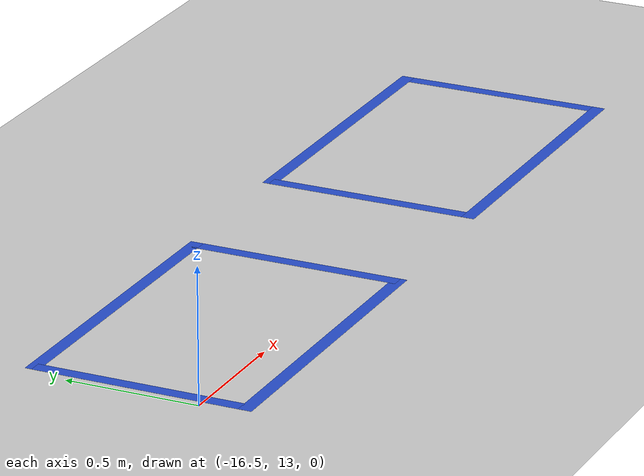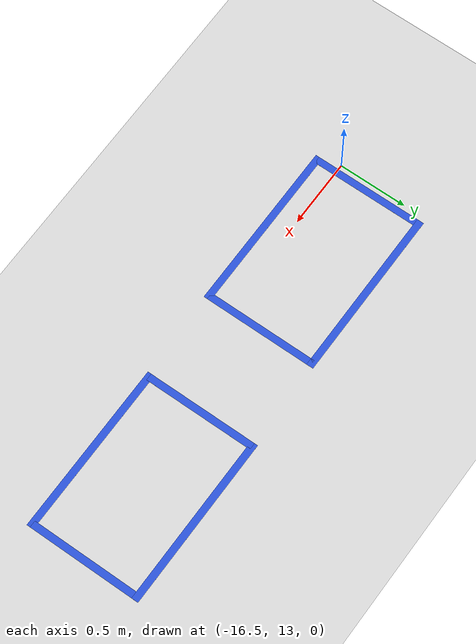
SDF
<sdf version="1.6">
 <world name="default">
  <model name="ground_plane">
   <static>1</static>
   <link name="link">
    <collision name="collision">
     <geometry><plane><normal>0 0 1</normal><size>100 100</size></plane></geometry>
     <surface><friction><ode><mu>100</mu><mu2>50</mu2></ode></friction></surface>
    </collision>
    <visual name="visual">
     <cast_shadows>0</cast_shadows>
     <geometry><plane><normal>0 0 1</normal><size>100 100</size></plane></geometry>
     <material>
      <script><uri>file://media/materials/scripts/gazebo.material</uri><name>Gazebo/Grey</name></script>
     </material>
    </visual>
   </link>
  </model>
  <model name="waitSpot_1">
   <link name="link_4">
    <inertial>
     <mass>1</mass>
     <inertia>
      <ixx>0.166667</ixx>
      <ixy>0</ixy>
      <ixz>0</ixz>
      <iyy>0.166667</iyy>
      <iyz>0</iyz>
      <izz>0.166667</izz>
     </inertia>
    </inertial>
    <visual name="ModelPreview_8::link_4::visual_3">
     <pose>-0.6 0 0 0 -0 0</pose>
     <geometry><box><size>0.05 0.8 0.0001</size></box></geometry>
     <material>
      <lighting>1</lighting>
      <script><uri>file://media/materials/scripts/gazebo.material</uri><name>Gazebo/Blue</name></script>
     </material>
    </visual>
    <visual name="ModelPreview_8::link_4::visual_1">
     <pose>0 -0.4 0 0 -0 0</pose>
     <geometry><box><size>1.25 0.05 0.0001</size></box></geometry>
     <material>
      <lighting>1</lighting>
      <script><uri>file://media/materials/scripts/gazebo.material</uri><name>Gazebo/Blue</name></script>
     </material>
    </visual>
    <visual name="ModelPreview_8::link_4::visual_2">
     <pose>0.6 0 0 0 -0 0</pose>
     <geometry><box><size>0.05 0.8 0.0001</size></box></geometry>
     <material>
      <lighting>1</lighting>
      <script><uri>file://media/materials/scripts/gazebo.material</uri><name>Gazebo/Blue</name></script>
     </material>
    </visual>
    <visual name="visual">
     <pose>0 0.4 0 0 -0 0</pose>
     <geometry><box><size>1.25 0.05 0.0001</size></box></geometry>
     <material>
      <lighting>1</lighting>
      <script><uri>file://media/materials/scripts/gazebo.material</uri><name>Gazebo/Blue</name></script>
     </material>
    </visual>
    <collision name="collision_2">
     <pose>0.6 0 0 0 -0 0</pose>
     <geometry><box><size>0.05 0.8 0.0001</size></box></geometry>
     <surface>
      <friction>
       <ode><mu>1</mu><mu2>1</mu2><fdir1>0 0 0</fdir1><slip1>0</slip1><slip2>0</slip2></ode>
       <torsional>
        <coefficient>1</coefficient>
        <patch_radius>0</patch_radius>
        <surface_radius>0</surface_radius>
        <use_patch_radius>1</use_patch_radius>
        <ode><slip>0</slip></ode>
       </torsional>
      </friction>
      <bounce><restitution_coefficient>0</restitution_coefficient><threshold>1e+06</threshold></bounce>
      <contact>
       <collide_without_contact>0</collide_without_contact>
       <collide_without_contact_bitmask>1</collide_without_contact_bitmask>
       <collide_bitmask>1</collide_bitmask>
       <ode>
        <soft_cfm>0</soft_cfm>
        <soft_erp>0.2</soft_erp>
        <kp>1e+13</kp>
        <kd>1</kd>
        <max_vel>0.01</max_vel>
        <min_depth>0</min_depth>
       </ode>
       <bullet>
        <split_impulse>1</split_impulse>
        <split_impulse_penetration_threshold>-0.01</split_impulse_penetration_threshold>
        <soft_cfm>0</soft_cfm>
        <soft_erp>0.2</soft_erp>
        <kp>1e+13</kp>
        <kd>1</kd>
       </bullet>
      </contact>
     </surface>
    </collision>
    <collision name="collision">
     <pose>0 0.4 0 0 -0 0</pose>
     <geometry><box><size>1.25 0.05 0.0001</size></box></geometry>
     <surface>
      <friction>
       <ode><mu>1</mu><mu2>1</mu2><fdir1>0 0 0</fdir1><slip1>0</slip1><slip2>0</slip2></ode>
       <torsional>
        <coefficient>1</coefficient>
        <patch_radius>0</patch_radius>
        <surface_radius>0</surface_radius>
        <use_patch_radius>1</use_patch_radius>
        <ode><slip>0</slip></ode>
       </torsional>
      </friction>
      <bounce><restitution_coefficient>0</restitution_coefficient><threshold>1e+06</threshold></bounce>
      <contact>
       <collide_without_contact>0</collide_without_contact>
       <collide_without_contact_bitmask>1</collide_without_contact_bitmask>
       <collide_bitmask>1</collide_bitmask>
       <ode>
        <soft_cfm>0</soft_cfm>
        <soft_erp>0.2</soft_erp>
        <kp>1e+13</kp>
        <kd>1</kd>
        <max_vel>0.01</max_vel>
        <min_depth>0</min_depth>
       </ode>
       <bullet>
        <split_impulse>1</split_impulse>
        <split_impulse_penetration_threshold>-0.01</split_impulse_penetration_threshold>
        <soft_cfm>0</soft_cfm>
        <soft_erp>0.2</soft_erp>
        <kp>1e+13</kp>
        <kd>1</kd>
       </bullet>
      </contact>
     </surface>
    </collision>
    <collision name="collision_1">
     <pose>0 -0.4 0 0 -0 0</pose>
     <geometry><box><size>1.25 0.05 0.0001</size></box></geometry>
     <surface>
      <friction>
       <ode><mu>1</mu><mu2>1</mu2><fdir1>0 0 0</fdir1><slip1>0</slip1><slip2>0</slip2></ode>
       <torsional>
        <coefficient>1</coefficient>
        <patch_radius>0</patch_radius>
        <surface_radius>0</surface_radius>
        <use_patch_radius>1</use_patch_radius>
        <ode><slip>0</slip></ode>
       </torsional>
      </friction>
      <bounce><restitution_coefficient>0</restitution_coefficient><threshold>1e+06</threshold></bounce>
      <contact>
       <collide_without_contact>0</collide_without_contact>
       <collide_without_contact_bitmask>1</collide_without_contact_bitmask>
       <collide_bitmask>1</collide_bitmask>
       <ode>
        <soft_cfm>0</soft_cfm>
        <soft_erp>0.2</soft_erp>
        <kp>1e+13</kp>
        <kd>1</kd>
        <max_vel>0.01</max_vel>
        <min_depth>0</min_depth>
       </ode>
       <bullet>
        <split_impulse>1</split_impulse>
        <split_impulse_penetration_threshold>-0.01</split_impulse_penetration_threshold>
        <soft_cfm>0</soft_cfm>
        <soft_erp>0.2</soft_erp>
        <kp>1e+13</kp>
        <kd>1</kd>
       </bullet>
      </contact>
     </surface>
    </collision>
    <collision name="collision_3">
     <pose>-0.6 0 0 0 -0 0</pose>
     <geometry><box><size>0.05 0.8 0.0001</size></box></geometry>
     <surface>
      <friction>
       <ode><mu>1</mu><mu2>1</mu2><fdir1>0 0 0</fdir1><slip1>0</slip1><slip2>0</slip2></ode>
       <torsional>
        <coefficient>1</coefficient>
        <patch_radius>0</patch_radius>
        <surface_radius>0</surface_radius>
        <use_patch_radius>1</use_patch_radius>
        <ode><slip>0</slip></ode>
       </torsional>
      </friction>
      <bounce><restitution_coefficient>0</restitution_coefficient><threshold>1e+06</threshold></bounce>
      <contact>
       <collide_without_contact>0</collide_without_contact>
       <collide_without_contact_bitmask>1</collide_without_contact_bitmask>
       <collide_bitmask>1</collide_bitmask>
       <ode>
        <soft_cfm>0</soft_cfm>
        <soft_erp>0.2</soft_erp>
        <kp>1e+13</kp>
        <kd>1</kd>
        <max_vel>0.01</max_vel>
        <min_depth>0</min_depth>
       </ode>
       <bullet>
        <split_impulse>1</split_impulse>
        <split_impulse_penetration_threshold>-0.01</split_impulse_penetration_threshold>
        <soft_cfm>0</soft_cfm>
        <soft_erp>0.2</soft_erp>
        <kp>1e+13</kp>
        <kd>1</kd>
       </bullet>
      </contact>
     </surface>
    </collision>
   </link>
   <static>1</static>
   <pose>-15.8425 13.2467 0 0 -0 0</pose>
  </model>
  <model name="waitSpot_2">
   <link name="link_4">
    <inertial>
     <mass>1</mass>
     <inertia>
      <ixx>0.166667</ixx>
      <ixy>0</ixy>
      <ixz>0</ixz>
      <iyy>0.166667</iyy>
      <iyz>0</iyz>
      <izz>0.166667</izz>
     </inertia>
    </inertial>
    <visual name="ModelPreview_8::link_4::visual_3">
     <pose>-0.6 0 0 0 -0 0</pose>
     <geometry><box><size>0.05 0.8 0.0001</size></box></geometry>
     <material>
      <lighting>1</lighting>
      <script><uri>file://media/materials/scripts/gazebo.material</uri><name>Gazebo/Blue</name></script>
     </material>
    </visual>
    <visual name="ModelPreview_8::link_4::visual_1">
     <pose>0 -0.4 0 0 -0 0</pose>
     <geometry><box><size>1.25 0.05 0.0001</size></box></geometry>
     <material>
      <lighting>1</lighting>
      <script><uri>file://media/materials/scripts/gazebo.material</uri><name>Gazebo/Blue</name></script>
     </material>
    </visual>
    <visual name="ModelPreview_8::link_4::visual_2">
     <pose>0.6 0 0 0 -0 0</pose>
     <geometry><box><size>0.05 0.8 0.0001</size></box></geometry>
     <material>
      <lighting>1</lighting>
      <script><uri>file://media/materials/scripts/gazebo.material</uri><name>Gazebo/Blue</name></script>
     </material>
    </visual>
    <visual name="visual">
     <pose>0 0.4 0 0 -0 0</pose>
     <geometry><box><size>1.25 0.05 0.0001</size></box></geometry>
     <material>
      <lighting>1</lighting>
      <script><uri>file://media/materials/scripts/gazebo.material</uri><name>Gazebo/Blue</name></script>
     </material>
    </visual>
    <collision name="collision_2">
     <pose>0.6 0 0 0 -0 0</pose>
     <geometry><box><size>0.05 0.8 0.0001</size></box></geometry>
     <surface>
      <friction>
       <ode><mu>1</mu><mu2>1</mu2><fdir1>0 0 0</fdir1><slip1>0</slip1><slip2>0</slip2></ode>
       <torsional>
        <coefficient>1</coefficient>
        <patch_radius>0</patch_radius>
        <surface_radius>0</surface_radius>
        <use_patch_radius>1</use_patch_radius>
        <ode><slip>0</slip></ode>
       </torsional>
      </friction>
      <bounce><restitution_coefficient>0</restitution_coefficient><threshold>1e+06</threshold></bounce>
      <contact>
       <collide_without_contact>0</collide_without_contact>
       <collide_without_contact_bitmask>1</collide_without_contact_bitmask>
       <collide_bitmask>1</collide_bitmask>
       <ode>
        <soft_cfm>0</soft_cfm>
        <soft_erp>0.2</soft_erp>
        <kp>1e+13</kp>
        <kd>1</kd>
        <max_vel>0.01</max_vel>
        <min_depth>0</min_depth>
       </ode>
       <bullet>
        <split_impulse>1</split_impulse>
        <split_impulse_penetration_threshold>-0.01</split_impulse_penetration_threshold>
        <soft_cfm>0</soft_cfm>
        <soft_erp>0.2</soft_erp>
        <kp>1e+13</kp>
        <kd>1</kd>
       </bullet>
      </contact>
     </surface>
    </collision>
    <collision name="collision">
     <pose>0 0.4 0 0 -0 0</pose>
     <geometry><box><size>1.25 0.05 0.0001</size></box></geometry>
     <surface>
      <friction>
       <ode><mu>1</mu><mu2>1</mu2><fdir1>0 0 0</fdir1><slip1>0</slip1><slip2>0</slip2></ode>
       <torsional>
        <coefficient>1</coefficient>
        <patch_radius>0</patch_radius>
        <surface_radius>0</surface_radius>
        <use_patch_radius>1</use_patch_radius>
        <ode><slip>0</slip></ode>
       </torsional>
      </friction>
      <bounce><restitution_coefficient>0</restitution_coefficient><threshold>1e+06</threshold></bounce>
      <contact>
       <collide_without_contact>0</collide_without_contact>
       <collide_without_contact_bitmask>1</collide_without_contact_bitmask>
       <collide_bitmask>1</collide_bitmask>
       <ode>
        <soft_cfm>0</soft_cfm>
        <soft_erp>0.2</soft_erp>
        <kp>1e+13</kp>
        <kd>1</kd>
        <max_vel>0.01</max_vel>
        <min_depth>0</min_depth>
       </ode>
       <bullet>
        <split_impulse>1</split_impulse>
        <split_impulse_penetration_threshold>-0.01</split_impulse_penetration_threshold>
        <soft_cfm>0</soft_cfm>
        <soft_erp>0.2</soft_erp>
        <kp>1e+13</kp>
        <kd>1</kd>
       </bullet>
      </contact>
     </surface>
    </collision>
    <collision name="collision_1">
     <pose>0 -0.4 0 0 -0 0</pose>
     <geometry><box><size>1.25 0.05 0.0001</size></box></geometry>
     <surface>
      <friction>
       <ode><mu>1</mu><mu2>1</mu2><fdir1>0 0 0</fdir1><slip1>0</slip1><slip2>0</slip2></ode>
       <torsional>
        <coefficient>1</coefficient>
        <patch_radius>0</patch_radius>
        <surface_radius>0</surface_radius>
        <use_patch_radius>1</use_patch_radius>
        <ode><slip>0</slip></ode>
       </torsional>
      </friction>
      <bounce><restitution_coefficient>0</restitution_coefficient><threshold>1e+06</threshold></bounce>
      <contact>
       <collide_without_contact>0</collide_without_contact>
       <collide_without_contact_bitmask>1</collide_without_contact_bitmask>
       <collide_bitmask>1</collide_bitmask>
       <ode>
        <soft_cfm>0</soft_cfm>
        <soft_erp>0.2</soft_erp>
        <kp>1e+13</kp>
        <kd>1</kd>
        <max_vel>0.01</max_vel>
        <min_depth>0</min_depth>
       </ode>
       <bullet>
        <split_impulse>1</split_impulse>
        <split_impulse_penetration_threshold>-0.01</split_impulse_penetration_threshold>
        <soft_cfm>0</soft_cfm>
        <soft_erp>0.2</soft_erp>
        <kp>1e+13</kp>
        <kd>1</kd>
       </bullet>
      </contact>
     </surface>
    </collision>
    <collision name="collision_3">
     <pose>-0.6 0 0 0 -0 0</pose>
     <geometry><box><size>0.05 0.8 0.0001</size></box></geometry>
     <surface>
      <friction>
       <ode><mu>1</mu><mu2>1</mu2><fdir1>0 0 0</fdir1><slip1>0</slip1><slip2>0</slip2></ode>
       <torsional>
        <coefficient>1</coefficient>
        <patch_radius>0</patch_radius>
        <surface_radius>0</surface_radius>
        <use_patch_radius>1</use_patch_radius>
        <ode><slip>0</slip></ode>
       </torsional>
      </friction>
      <bounce><restitution_coefficient>0</restitution_coefficient><threshold>1e+06</threshold></bounce>
      <contact>
       <collide_without_contact>0</collide_without_contact>
       <collide_without_contact_bitmask>1</collide_without_contact_bitmask>
       <collide_bitmask>1</collide_bitmask>
       <ode>
        <soft_cfm>0</soft_cfm>
        <soft_erp>0.2</soft_erp>
        <kp>1e+13</kp>
        <kd>1</kd>
        <max_vel>0.01</max_vel>
        <min_depth>0</min_depth>
       </ode>
       <bullet>
        <split_impulse>1</split_impulse>
        <split_impulse_penetration_threshold>-0.01</split_impulse_penetration_threshold>
        <soft_cfm>0</soft_cfm>
        <soft_erp>0.2</soft_erp>
        <kp>1e+13</kp>
        <kd>1</kd>
       </bullet>
      </contact>
     </surface>
    </collision>
   </link>
   <static>1</static>
   <pose>-13.968 13.2651 0 0 -0 0</pose>
  </model>
 </world>
</sdf>
